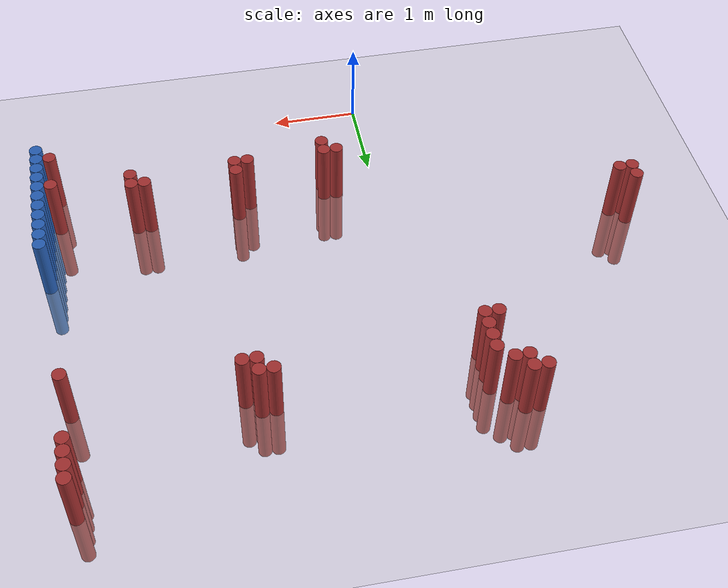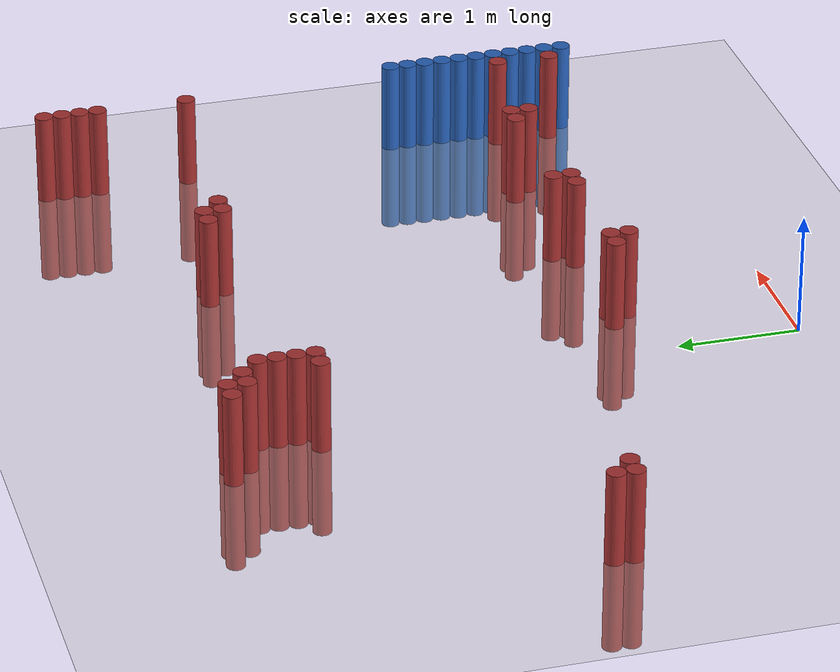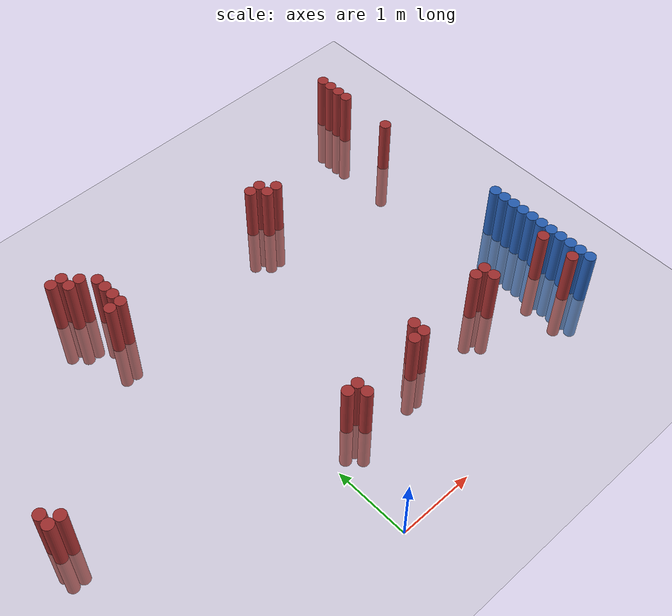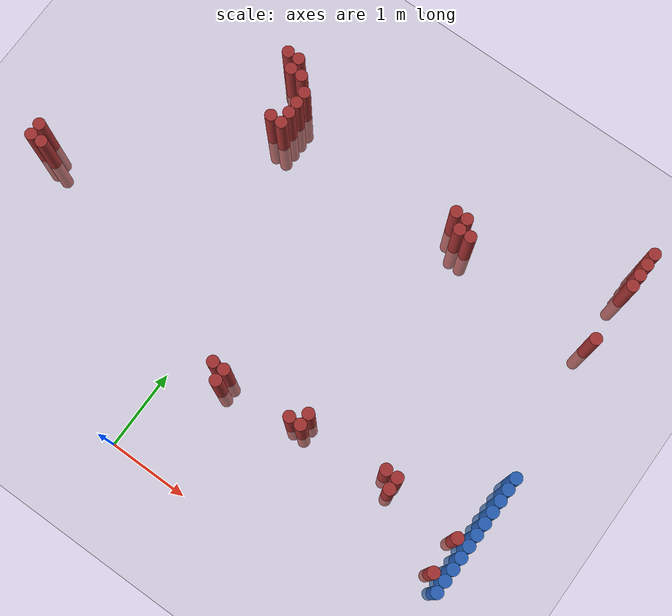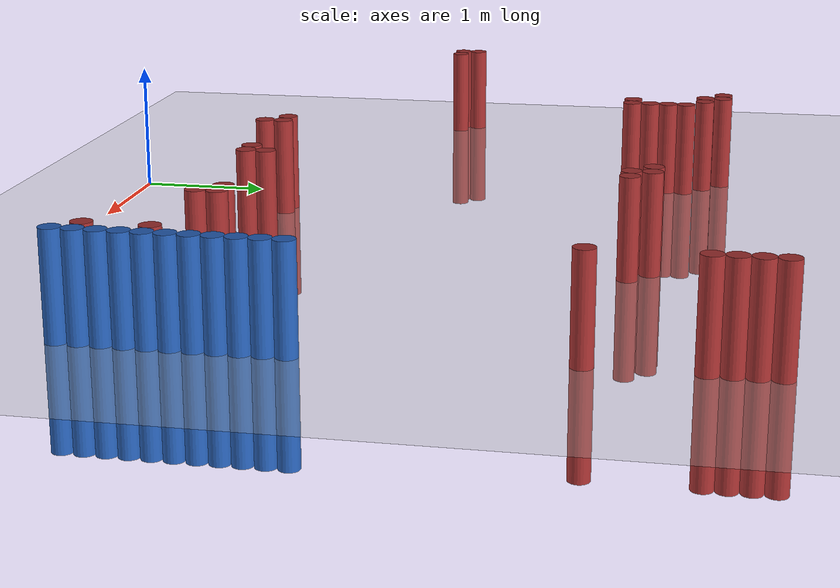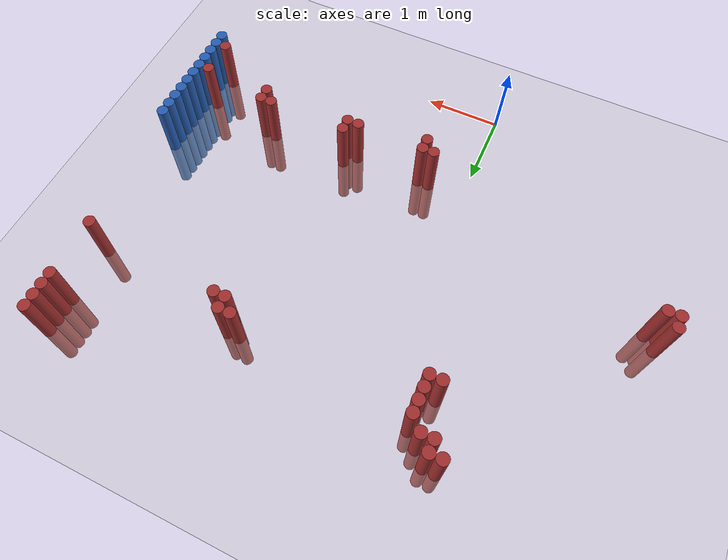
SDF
<sdf version="1.6">
 <world name="default">
  <model name="ground_plane">
   <static>1</static>
   <link name="link">
    <collision name="collision">
     <geometry><plane><normal>0 0 1</normal><size>100 100</size></plane></geometry>
     <surface><friction><ode><mu>100</mu><mu2>50</mu2></ode></friction></surface>
    </collision>
    <visual name="visual">
     <cast_shadows>0</cast_shadows>
     <geometry><plane><normal>0 0 1</normal><size>100 100</size></plane></geometry>
     <material>
      <script><uri>file://media/materials/scripts/gazebo.material</uri><name>Gazebo/Grey</name></script>
     </material>
    </visual>
   </link>
  </model>
  <model name="unit_cylinder_126">
   <static>1</static>
   <pose>3.925000 0.925000 0.000000 0.000000 0.000000 0.000000</pose>
   <link name="link">
    <inertial>
     <mass>1</mass>
     <inertia><ixx>0.145833</ixx><ixy>0</ixy><ixz>0</ixz><iyy>0.145833</iyy><iyz>0</iyz><izz>0.125</izz></inertia>
    </inertial>
    <collision name="collision">
     <geometry><cylinder><radius>0.075000</radius><length>1.5</length></cylinder></geometry>
    </collision>
    <visual name="visual">
     <geometry><cylinder><radius>0.075000</radius><length>1.5</length></cylinder></geometry>
     <material>
      <ambient>0.152000 0.379000 0.720000 1</ambient>
      <diffuse>0.152000 0.379000 0.720000 1</diffuse>
     </material>
     <material>
      <script><name>Gazebo/Grey</name><uri>file://media/materials/scripts/gazebo.material</uri></script>
     </material>
    </visual>
   </link>
  </model>
  <model name="unit_cylinder_128">
   <static>1</static>
   <pose>3.925000 1.075000 0.000000 0.000000 0.000000 0.000000</pose>
   <link name="link">
    <inertial>
     <mass>1</mass>
     <inertia><ixx>0.145833</ixx><ixy>0</ixy><ixz>0</ixz><iyy>0.145833</iyy><iyz>0</iyz><izz>0.125</izz></inertia>
    </inertial>
    <collision name="collision">
     <geometry><cylinder><radius>0.075000</radius><length>1.5</length></cylinder></geometry>
    </collision>
    <visual name="visual">
     <geometry><cylinder><radius>0.075000</radius><length>1.5</length></cylinder></geometry>
     <material>
      <ambient>0.152000 0.379000 0.720000 1</ambient>
      <diffuse>0.152000 0.379000 0.720000 1</diffuse>
     </material>
     <material>
      <script><name>Gazebo/Grey</name><uri>file://media/materials/scripts/gazebo.material</uri></script>
     </material>
    </visual>
   </link>
  </model>
  <model name="unit_cylinder_130">
   <static>1</static>
   <pose>3.925000 1.225000 0.000000 0.000000 0.000000 0.000000</pose>
   <link name="link">
    <inertial>
     <mass>1</mass>
     <inertia><ixx>0.145833</ixx><ixy>0</ixy><ixz>0</ixz><iyy>0.145833</iyy><iyz>0</iyz><izz>0.125</izz></inertia>
    </inertial>
    <collision name="collision">
     <geometry><cylinder><radius>0.075000</radius><length>1.5</length></cylinder></geometry>
    </collision>
    <visual name="visual">
     <geometry><cylinder><radius>0.075000</radius><length>1.5</length></cylinder></geometry>
     <material>
      <ambient>0.152000 0.379000 0.720000 1</ambient>
      <diffuse>0.152000 0.379000 0.720000 1</diffuse>
     </material>
     <material>
      <script><name>Gazebo/Grey</name><uri>file://media/materials/scripts/gazebo.material</uri></script>
     </material>
    </visual>
   </link>
  </model>
  <model name="unit_cylinder_132">
   <static>1</static>
   <pose>3.925000 1.375000 0.000000 0.000000 0.000000 0.000000</pose>
   <link name="link">
    <inertial>
     <mass>1</mass>
     <inertia><ixx>0.145833</ixx><ixy>0</ixy><ixz>0</ixz><iyy>0.145833</iyy><iyz>0</iyz><izz>0.125</izz></inertia>
    </inertial>
    <collision name="collision">
     <geometry><cylinder><radius>0.075000</radius><length>1.5</length></cylinder></geometry>
    </collision>
    <visual name="visual">
     <geometry><cylinder><radius>0.075000</radius><length>1.5</length></cylinder></geometry>
     <material>
      <ambient>0.152000 0.379000 0.720000 1</ambient>
      <diffuse>0.152000 0.379000 0.720000 1</diffuse>
     </material>
     <material>
      <script><name>Gazebo/Grey</name><uri>file://media/materials/scripts/gazebo.material</uri></script>
     </material>
    </visual>
   </link>
  </model>
  <model name="unit_cylinder_134">
   <static>1</static>
   <pose>3.925000 1.525000 0.000000 0.000000 0.000000 0.000000</pose>
   <link name="link">
    <inertial>
     <mass>1</mass>
     <inertia><ixx>0.145833</ixx><ixy>0</ixy><ixz>0</ixz><iyy>0.145833</iyy><iyz>0</iyz><izz>0.125</izz></inertia>
    </inertial>
    <collision name="collision">
     <geometry><cylinder><radius>0.075000</radius><length>1.5</length></cylinder></geometry>
    </collision>
    <visual name="visual">
     <geometry><cylinder><radius>0.075000</radius><length>1.5</length></cylinder></geometry>
     <material>
      <ambient>0.152000 0.379000 0.720000 1</ambient>
      <diffuse>0.152000 0.379000 0.720000 1</diffuse>
     </material>
     <material>
      <script><name>Gazebo/Grey</name><uri>file://media/materials/scripts/gazebo.material</uri></script>
     </material>
    </visual>
   </link>
  </model>
  <model name="unit_cylinder_136">
   <static>1</static>
   <pose>3.925000 1.675000 0.000000 0.000000 0.000000 0.000000</pose>
   <link name="link">
    <inertial>
     <mass>1</mass>
     <inertia><ixx>0.145833</ixx><ixy>0</ixy><ixz>0</ixz><iyy>0.145833</iyy><iyz>0</iyz><izz>0.125</izz></inertia>
    </inertial>
    <collision name="collision">
     <geometry><cylinder><radius>0.075000</radius><length>1.5</length></cylinder></geometry>
    </collision>
    <visual name="visual">
     <geometry><cylinder><radius>0.075000</radius><length>1.5</length></cylinder></geometry>
     <material>
      <ambient>0.152000 0.379000 0.720000 1</ambient>
      <diffuse>0.152000 0.379000 0.720000 1</diffuse>
     </material>
     <material>
      <script><name>Gazebo/Grey</name><uri>file://media/materials/scripts/gazebo.material</uri></script>
     </material>
    </visual>
   </link>
  </model>
  <model name="unit_cylinder_138">
   <static>1</static>
   <pose>3.925000 1.825000 0.000000 0.000000 0.000000 0.000000</pose>
   <link name="link">
    <inertial>
     <mass>1</mass>
     <inertia><ixx>0.145833</ixx><ixy>0</ixy><ixz>0</ixz><iyy>0.145833</iyy><iyz>0</iyz><izz>0.125</izz></inertia>
    </inertial>
    <collision name="collision">
     <geometry><cylinder><radius>0.075000</radius><length>1.5</length></cylinder></geometry>
    </collision>
    <visual name="visual">
     <geometry><cylinder><radius>0.075000</radius><length>1.5</length></cylinder></geometry>
     <material>
      <ambient>0.152000 0.379000 0.720000 1</ambient>
      <diffuse>0.152000 0.379000 0.720000 1</diffuse>
     </material>
     <material>
      <script><name>Gazebo/Grey</name><uri>file://media/materials/scripts/gazebo.material</uri></script>
     </material>
    </visual>
   </link>
  </model>
  <model name="unit_cylinder_140">
   <static>1</static>
   <pose>3.925000 1.975000 0.000000 0.000000 0.000000 0.000000</pose>
   <link name="link">
    <inertial>
     <mass>1</mass>
     <inertia><ixx>0.145833</ixx><ixy>0</ixy><ixz>0</ixz><iyy>0.145833</iyy><iyz>0</iyz><izz>0.125</izz></inertia>
    </inertial>
    <collision name="collision">
     <geometry><cylinder><radius>0.075000</radius><length>1.5</length></cylinder></geometry>
    </collision>
    <visual name="visual">
     <geometry><cylinder><radius>0.075000</radius><length>1.5</length></cylinder></geometry>
     <material>
      <ambient>0.152000 0.379000 0.720000 1</ambient>
      <diffuse>0.152000 0.379000 0.720000 1</diffuse>
     </material>
     <material>
      <script><name>Gazebo/Grey</name><uri>file://media/materials/scripts/gazebo.material</uri></script>
     </material>
    </visual>
   </link>
  </model>
  <model name="unit_cylinder_142">
   <static>1</static>
   <pose>3.925000 2.125000 0.000000 0.000000 0.000000 0.000000</pose>
   <link name="link">
    <inertial>
     <mass>1</mass>
     <inertia><ixx>0.145833</ixx><ixy>0</ixy><ixz>0</ixz><iyy>0.145833</iyy><iyz>0</iyz><izz>0.125</izz></inertia>
    </inertial>
    <collision name="collision">
     <geometry><cylinder><radius>0.075000</radius><length>1.5</length></cylinder></geometry>
    </collision>
    <visual name="visual">
     <geometry><cylinder><radius>0.075000</radius><length>1.5</length></cylinder></geometry>
     <material>
      <ambient>0.152000 0.379000 0.720000 1</ambient>
      <diffuse>0.152000 0.379000 0.720000 1</diffuse>
     </material>
     <material>
      <script><name>Gazebo/Grey</name><uri>file://media/materials/scripts/gazebo.material</uri></script>
     </material>
    </visual>
   </link>
  </model>
  <model name="unit_cylinder_144">
   <static>1</static>
   <pose>3.925000 2.275000 0.000000 0.000000 0.000000 0.000000</pose>
   <link name="link">
    <inertial>
     <mass>1</mass>
     <inertia><ixx>0.145833</ixx><ixy>0</ixy><ixz>0</ixz><iyy>0.145833</iyy><iyz>0</iyz><izz>0.125</izz></inertia>
    </inertial>
    <collision name="collision">
     <geometry><cylinder><radius>0.075000</radius><length>1.5</length></cylinder></geometry>
    </collision>
    <visual name="visual">
     <geometry><cylinder><radius>0.075000</radius><length>1.5</length></cylinder></geometry>
     <material>
      <ambient>0.152000 0.379000 0.720000 1</ambient>
      <diffuse>0.152000 0.379000 0.720000 1</diffuse>
     </material>
     <material>
      <script><name>Gazebo/Grey</name><uri>file://media/materials/scripts/gazebo.material</uri></script>
     </material>
    </visual>
   </link>
  </model>
  <model name="unit_cylinder_294">
   <static>1</static>
   <pose>-2.825000 2.275000 0.000000 0.000000 0.000000 0.000000</pose>
   <link name="link">
    <inertial>
     <mass>1</mass>
     <inertia><ixx>0.145833</ixx><ixy>0</ixy><ixz>0</ixz><iyy>0.145833</iyy><iyz>0</iyz><izz>0.125</izz></inertia>
    </inertial>
    <collision name="collision">
     <geometry><cylinder><radius>0.075000</radius><length>1.5</length></cylinder></geometry>
    </collision>
    <visual name="visual">
     <geometry><cylinder><radius>0.075000</radius><length>1.5</length></cylinder></geometry>
     <material>
      <ambient>0.648000 0.192000 0.192000 1</ambient>
      <diffuse>0.648000 0.192000 0.192000 1</diffuse>
     </material>
     <material>
      <script><name>Gazebo/Grey</name><uri>file://media/materials/scripts/gazebo.material</uri></script>
     </material>
    </visual>
   </link>
  </model>
  <model name="unit_cylinder_295">
   <static>1</static>
   <pose>-2.825000 2.425000 0.000000 0.000000 0.000000 0.000000</pose>
   <link name="link">
    <inertial>
     <mass>1</mass>
     <inertia><ixx>0.145833</ixx><ixy>0</ixy><ixz>0</ixz><iyy>0.145833</iyy><iyz>0</iyz><izz>0.125</izz></inertia>
    </inertial>
    <collision name="collision">
     <geometry><cylinder><radius>0.075000</radius><length>1.5</length></cylinder></geometry>
    </collision>
    <visual name="visual">
     <geometry><cylinder><radius>0.075000</radius><length>1.5</length></cylinder></geometry>
     <material>
      <ambient>0.648000 0.192000 0.192000 1</ambient>
      <diffuse>0.648000 0.192000 0.192000 1</diffuse>
     </material>
     <material>
      <script><name>Gazebo/Grey</name><uri>file://media/materials/scripts/gazebo.material</uri></script>
     </material>
    </visual>
   </link>
  </model>
  <model name="unit_cylinder_299">
   <static>1</static>
   <pose>-2.675000 2.275000 0.000000 0.000000 0.000000 0.000000</pose>
   <link name="link">
    <inertial>
     <mass>1</mass>
     <inertia><ixx>0.145833</ixx><ixy>0</ixy><ixz>0</ixz><iyy>0.145833</iyy><iyz>0</iyz><izz>0.125</izz></inertia>
    </inertial>
    <collision name="collision">
     <geometry><cylinder><radius>0.075000</radius><length>1.5</length></cylinder></geometry>
    </collision>
    <visual name="visual">
     <geometry><cylinder><radius>0.075000</radius><length>1.5</length></cylinder></geometry>
     <material>
      <ambient>0.648000 0.192000 0.192000 1</ambient>
      <diffuse>0.648000 0.192000 0.192000 1</diffuse>
     </material>
     <material>
      <script><name>Gazebo/Grey</name><uri>file://media/materials/scripts/gazebo.material</uri></script>
     </material>
    </visual>
   </link>
  </model>
  <model name="unit_cylinder_301">
   <static>1</static>
   <pose>-1.025000 4.825000 0.000000 0.000000 0.000000 0.000000</pose>
   <link name="link">
    <inertial>
     <mass>1</mass>
     <inertia><ixx>0.145833</ixx><ixy>0</ixy><ixz>0</ixz><iyy>0.145833</iyy><iyz>0</iyz><izz>0.125</izz></inertia>
    </inertial>
    <collision name="collision">
     <geometry><cylinder><radius>0.075000</radius><length>1.5</length></cylinder></geometry>
    </collision>
    <visual name="visual">
     <geometry><cylinder><radius>0.075000</radius><length>1.5</length></cylinder></geometry>
     <material>
      <ambient>0.648000 0.192000 0.192000 1</ambient>
      <diffuse>0.648000 0.192000 0.192000 1</diffuse>
     </material>
     <material>
      <script><name>Gazebo/Grey</name><uri>file://media/materials/scripts/gazebo.material</uri></script>
     </material>
    </visual>
   </link>
  </model>
  <model name="unit_cylinder_302">
   <static>1</static>
   <pose>-0.875000 4.675000 0.000000 0.000000 0.000000 0.000000</pose>
   <link name="link">
    <inertial>
     <mass>1</mass>
     <inertia><ixx>0.145833</ixx><ixy>0</ixy><ixz>0</ixz><iyy>0.145833</iyy><iyz>0</iyz><izz>0.125</izz></inertia>
    </inertial>
    <collision name="collision">
     <geometry><cylinder><radius>0.075000</radius><length>1.5</length></cylinder></geometry>
    </collision>
    <visual name="visual">
     <geometry><cylinder><radius>0.075000</radius><length>1.5</length></cylinder></geometry>
     <material>
      <ambient>0.648000 0.192000 0.192000 1</ambient>
      <diffuse>0.648000 0.192000 0.192000 1</diffuse>
     </material>
     <material>
      <script><name>Gazebo/Grey</name><uri>file://media/materials/scripts/gazebo.material</uri></script>
     </material>
    </visual>
   </link>
  </model>
  <model name="unit_cylinder_303">
   <static>1</static>
   <pose>-0.875000 4.825000 0.000000 0.000000 0.000000 0.000000</pose>
   <link name="link">
    <inertial>
     <mass>1</mass>
     <inertia><ixx>0.145833</ixx><ixy>0</ixy><ixz>0</ixz><iyy>0.145833</iyy><iyz>0</iyz><izz>0.125</izz></inertia>
    </inertial>
    <collision name="collision">
     <geometry><cylinder><radius>0.075000</radius><length>1.5</length></cylinder></geometry>
    </collision>
    <visual name="visual">
     <geometry><cylinder><radius>0.075000</radius><length>1.5</length></cylinder></geometry>
     <material>
      <ambient>0.648000 0.192000 0.192000 1</ambient>
      <diffuse>0.648000 0.192000 0.192000 1</diffuse>
     </material>
     <material>
      <script><name>Gazebo/Grey</name><uri>file://media/materials/scripts/gazebo.material</uri></script>
     </material>
    </visual>
   </link>
  </model>
  <model name="unit_cylinder_304">
   <static>1</static>
   <pose>-0.725000 4.075000 0.000000 0.000000 0.000000 0.000000</pose>
   <link name="link">
    <inertial>
     <mass>1</mass>
     <inertia><ixx>0.145833</ixx><ixy>0</ixy><ixz>0</ixz><iyy>0.145833</iyy><iyz>0</iyz><izz>0.125</izz></inertia>
    </inertial>
    <collision name="collision">
     <geometry><cylinder><radius>0.075000</radius><length>1.5</length></cylinder></geometry>
    </collision>
    <visual name="visual">
     <geometry><cylinder><radius>0.075000</radius><length>1.5</length></cylinder></geometry>
     <material>
      <ambient>0.648000 0.192000 0.192000 1</ambient>
      <diffuse>0.648000 0.192000 0.192000 1</diffuse>
     </material>
     <material>
      <script><name>Gazebo/Grey</name><uri>file://media/materials/scripts/gazebo.material</uri></script>
     </material>
    </visual>
   </link>
  </model>
  <model name="unit_cylinder_305">
   <static>1</static>
   <pose>-0.725000 4.675000 0.000000 0.000000 0.000000 0.000000</pose>
   <link name="link">
    <inertial>
     <mass>1</mass>
     <inertia><ixx>0.145833</ixx><ixy>0</ixy><ixz>0</ixz><iyy>0.145833</iyy><iyz>0</iyz><izz>0.125</izz></inertia>
    </inertial>
    <collision name="collision">
     <geometry><cylinder><radius>0.075000</radius><length>1.5</length></cylinder></geometry>
    </collision>
    <visual name="visual">
     <geometry><cylinder><radius>0.075000</radius><length>1.5</length></cylinder></geometry>
     <material>
      <ambient>0.648000 0.192000 0.192000 1</ambient>
      <diffuse>0.648000 0.192000 0.192000 1</diffuse>
     </material>
     <material>
      <script><name>Gazebo/Grey</name><uri>file://media/materials/scripts/gazebo.material</uri></script>
     </material>
    </visual>
   </link>
  </model>
  <model name="unit_cylinder_308">
   <static>1</static>
   <pose>-0.575000 4.075000 0.000000 0.000000 0.000000 0.000000</pose>
   <link name="link">
    <inertial>
     <mass>1</mass>
     <inertia><ixx>0.145833</ixx><ixy>0</ixy><ixz>0</ixz><iyy>0.145833</iyy><iyz>0</iyz><izz>0.125</izz></inertia>
    </inertial>
    <collision name="collision">
     <geometry><cylinder><radius>0.075000</radius><length>1.5</length></cylinder></geometry>
    </collision>
    <visual name="visual">
     <geometry><cylinder><radius>0.075000</radius><length>1.5</length></cylinder></geometry>
     <material>
      <ambient>0.648000 0.192000 0.192000 1</ambient>
      <diffuse>0.648000 0.192000 0.192000 1</diffuse>
     </material>
     <material>
      <script><name>Gazebo/Grey</name><uri>file://media/materials/scripts/gazebo.material</uri></script>
     </material>
    </visual>
   </link>
  </model>
  <model name="unit_cylinder_309">
   <static>1</static>
   <pose>-0.575000 4.225000 0.000000 0.000000 0.000000 0.000000</pose>
   <link name="link">
    <inertial>
     <mass>1</mass>
     <inertia><ixx>0.145833</ixx><ixy>0</ixy><ixz>0</ixz><iyy>0.145833</iyy><iyz>0</iyz><izz>0.125</izz></inertia>
    </inertial>
    <collision name="collision">
     <geometry><cylinder><radius>0.075000</radius><length>1.5</length></cylinder></geometry>
    </collision>
    <visual name="visual">
     <geometry><cylinder><radius>0.075000</radius><length>1.5</length></cylinder></geometry>
     <material>
      <ambient>0.648000 0.192000 0.192000 1</ambient>
      <diffuse>0.648000 0.192000 0.192000 1</diffuse>
     </material>
     <material>
      <script><name>Gazebo/Grey</name><uri>file://media/materials/scripts/gazebo.material</uri></script>
     </material>
    </visual>
   </link>
  </model>
  <model name="unit_cylinder_310">
   <static>1</static>
   <pose>-0.575000 4.375000 0.000000 0.000000 0.000000 0.000000</pose>
   <link name="link">
    <inertial>
     <mass>1</mass>
     <inertia><ixx>0.145833</ixx><ixy>0</ixy><ixz>0</ixz><iyy>0.145833</iyy><iyz>0</iyz><izz>0.125</izz></inertia>
    </inertial>
    <collision name="collision">
     <geometry><cylinder><radius>0.075000</radius><length>1.5</length></cylinder></geometry>
    </collision>
    <visual name="visual">
     <geometry><cylinder><radius>0.075000</radius><length>1.5</length></cylinder></geometry>
     <material>
      <ambient>0.648000 0.192000 0.192000 1</ambient>
      <diffuse>0.648000 0.192000 0.192000 1</diffuse>
     </material>
     <material>
      <script><name>Gazebo/Grey</name><uri>file://media/materials/scripts/gazebo.material</uri></script>
     </material>
    </visual>
   </link>
  </model>
  <model name="unit_cylinder_311">
   <static>1</static>
   <pose>-0.575000 4.525000 0.000000 0.000000 0.000000 0.000000</pose>
   <link name="link">
    <inertial>
     <mass>1</mass>
     <inertia><ixx>0.145833</ixx><ixy>0</ixy><ixz>0</ixz><iyy>0.145833</iyy><iyz>0</iyz><izz>0.125</izz></inertia>
    </inertial>
    <collision name="collision">
     <geometry><cylinder><radius>0.075000</radius><length>1.5</length></cylinder></geometry>
    </collision>
    <visual name="visual">
     <geometry><cylinder><radius>0.075000</radius><length>1.5</length></cylinder></geometry>
     <material>
      <ambient>0.648000 0.192000 0.192000 1</ambient>
      <diffuse>0.648000 0.192000 0.192000 1</diffuse>
     </material>
     <material>
      <script><name>Gazebo/Grey</name><uri>file://media/materials/scripts/gazebo.material</uri></script>
     </material>
    </visual>
   </link>
  </model>
  <model name="unit_cylinder_313">
   <static>1</static>
   <pose>0.475000 1.375000 0.000000 0.000000 0.000000 0.000000</pose>
   <link name="link">
    <inertial>
     <mass>1</mass>
     <inertia><ixx>0.145833</ixx><ixy>0</ixy><ixz>0</ixz><iyy>0.145833</iyy><iyz>0</iyz><izz>0.125</izz></inertia>
    </inertial>
    <collision name="collision">
     <geometry><cylinder><radius>0.075000</radius><length>1.5</length></cylinder></geometry>
    </collision>
    <visual name="visual">
     <geometry><cylinder><radius>0.075000</radius><length>1.5</length></cylinder></geometry>
     <material>
      <ambient>0.648000 0.192000 0.192000 1</ambient>
      <diffuse>0.648000 0.192000 0.192000 1</diffuse>
     </material>
     <material>
      <script><name>Gazebo/Grey</name><uri>file://media/materials/scripts/gazebo.material</uri></script>
     </material>
    </visual>
   </link>
  </model>
  <model name="unit_cylinder_314">
   <static>1</static>
   <pose>0.625000 1.225000 0.000000 0.000000 0.000000 0.000000</pose>
   <link name="link">
    <inertial>
     <mass>1</mass>
     <inertia><ixx>0.145833</ixx><ixy>0</ixy><ixz>0</ixz><iyy>0.145833</iyy><iyz>0</iyz><izz>0.125</izz></inertia>
    </inertial>
    <collision name="collision">
     <geometry><cylinder><radius>0.075000</radius><length>1.5</length></cylinder></geometry>
    </collision>
    <visual name="visual">
     <geometry><cylinder><radius>0.075000</radius><length>1.5</length></cylinder></geometry>
     <material>
      <ambient>0.648000 0.192000 0.192000 1</ambient>
      <diffuse>0.648000 0.192000 0.192000 1</diffuse>
     </material>
     <material>
      <script><name>Gazebo/Grey</name><uri>file://media/materials/scripts/gazebo.material</uri></script>
     </material>
    </visual>
   </link>
  </model>
  <model name="unit_cylinder_315">
   <static>1</static>
   <pose>0.625000 1.375000 0.000000 0.000000 0.000000 0.000000</pose>
   <link name="link">
    <inertial>
     <mass>1</mass>
     <inertia><ixx>0.145833</ixx><ixy>0</ixy><ixz>0</ixz><iyy>0.145833</iyy><iyz>0</iyz><izz>0.125</izz></inertia>
    </inertial>
    <collision name="collision">
     <geometry><cylinder><radius>0.075000</radius><length>1.5</length></cylinder></geometry>
    </collision>
    <visual name="visual">
     <geometry><cylinder><radius>0.075000</radius><length>1.5</length></cylinder></geometry>
     <material>
      <ambient>0.648000 0.192000 0.192000 1</ambient>
      <diffuse>0.648000 0.192000 0.192000 1</diffuse>
     </material>
     <material>
      <script><name>Gazebo/Grey</name><uri>file://media/materials/scripts/gazebo.material</uri></script>
     </material>
    </visual>
   </link>
  </model>
  <model name="unit_cylinder_318">
   <static>1</static>
   <pose>1.525000 1.375000 0.000000 0.000000 0.000000 0.000000</pose>
   <link name="link">
    <inertial>
     <mass>1</mass>
     <inertia><ixx>0.145833</ixx><ixy>0</ixy><ixz>0</ixz><iyy>0.145833</iyy><iyz>0</iyz><izz>0.125</izz></inertia>
    </inertial>
    <collision name="collision">
     <geometry><cylinder><radius>0.075000</radius><length>1.5</length></cylinder></geometry>
    </collision>
    <visual name="visual">
     <geometry><cylinder><radius>0.075000</radius><length>1.5</length></cylinder></geometry>
     <material>
      <ambient>0.648000 0.192000 0.192000 1</ambient>
      <diffuse>0.648000 0.192000 0.192000 1</diffuse>
     </material>
     <material>
      <script><name>Gazebo/Grey</name><uri>file://media/materials/scripts/gazebo.material</uri></script>
     </material>
    </visual>
   </link>
  </model>
  <model name="unit_cylinder_319">
   <static>1</static>
   <pose>1.675000 1.375000 0.000000 0.000000 0.000000 0.000000</pose>
   <link name="link">
    <inertial>
     <mass>1</mass>
     <inertia><ixx>0.145833</ixx><ixy>0</ixy><ixz>0</ixz><iyy>0.145833</iyy><iyz>0</iyz><izz>0.125</izz></inertia>
    </inertial>
    <collision name="collision">
     <geometry><cylinder><radius>0.075000</radius><length>1.5</length></cylinder></geometry>
    </collision>
    <visual name="visual">
     <geometry><cylinder><radius>0.075000</radius><length>1.5</length></cylinder></geometry>
     <material>
      <ambient>0.648000 0.192000 0.192000 1</ambient>
      <diffuse>0.648000 0.192000 0.192000 1</diffuse>
     </material>
     <material>
      <script><name>Gazebo/Grey</name><uri>file://media/materials/scripts/gazebo.material</uri></script>
     </material>
    </visual>
   </link>
  </model>
  <model name="unit_cylinder_320">
   <static>1</static>
   <pose>1.675000 1.525000 0.000000 0.000000 0.000000 0.000000</pose>
   <link name="link">
    <inertial>
     <mass>1</mass>
     <inertia><ixx>0.145833</ixx><ixy>0</ixy><ixz>0</ixz><iyy>0.145833</iyy><iyz>0</iyz><izz>0.125</izz></inertia>
    </inertial>
    <collision name="collision">
     <geometry><cylinder><radius>0.075000</radius><length>1.5</length></cylinder></geometry>
    </collision>
    <visual name="visual">
     <geometry><cylinder><radius>0.075000</radius><length>1.5</length></cylinder></geometry>
     <material>
      <ambient>0.648000 0.192000 0.192000 1</ambient>
      <diffuse>0.648000 0.192000 0.192000 1</diffuse>
     </material>
     <material>
      <script><name>Gazebo/Grey</name><uri>file://media/materials/scripts/gazebo.material</uri></script>
     </material>
    </visual>
   </link>
  </model>
  <model name="unit_cylinder_321">
   <static>1</static>
   <pose>1.675000 4.375000 0.000000 0.000000 0.000000 0.000000</pose>
   <link name="link">
    <inertial>
     <mass>1</mass>
     <inertia><ixx>0.145833</ixx><ixy>0</ixy><ixz>0</ixz><iyy>0.145833</iyy><iyz>0</iyz><izz>0.125</izz></inertia>
    </inertial>
    <collision name="collision">
     <geometry><cylinder><radius>0.075000</radius><length>1.5</length></cylinder></geometry>
    </collision>
    <visual name="visual">
     <geometry><cylinder><radius>0.075000</radius><length>1.5</length></cylinder></geometry>
     <material>
      <ambient>0.648000 0.192000 0.192000 1</ambient>
      <diffuse>0.648000 0.192000 0.192000 1</diffuse>
     </material>
     <material>
      <script><name>Gazebo/Grey</name><uri>file://media/materials/scripts/gazebo.material</uri></script>
     </material>
    </visual>
   </link>
  </model>
  <model name="unit_cylinder_322">
   <static>1</static>
   <pose>1.825000 4.225000 0.000000 0.000000 0.000000 0.000000</pose>
   <link name="link">
    <inertial>
     <mass>1</mass>
     <inertia><ixx>0.145833</ixx><ixy>0</ixy><ixz>0</ixz><iyy>0.145833</iyy><iyz>0</iyz><izz>0.125</izz></inertia>
    </inertial>
    <collision name="collision">
     <geometry><cylinder><radius>0.075000</radius><length>1.5</length></cylinder></geometry>
    </collision>
    <visual name="visual">
     <geometry><cylinder><radius>0.075000</radius><length>1.5</length></cylinder></geometry>
     <material>
      <ambient>0.648000 0.192000 0.192000 1</ambient>
      <diffuse>0.648000 0.192000 0.192000 1</diffuse>
     </material>
     <material>
      <script><name>Gazebo/Grey</name><uri>file://media/materials/scripts/gazebo.material</uri></script>
     </material>
    </visual>
   </link>
  </model>
  <model name="unit_cylinder_323">
   <static>1</static>
   <pose>1.825000 4.375000 0.000000 0.000000 0.000000 0.000000</pose>
   <link name="link">
    <inertial>
     <mass>1</mass>
     <inertia><ixx>0.145833</ixx><ixy>0</ixy><ixz>0</ixz><iyy>0.145833</iyy><iyz>0</iyz><izz>0.125</izz></inertia>
    </inertial>
    <collision name="collision">
     <geometry><cylinder><radius>0.075000</radius><length>1.5</length></cylinder></geometry>
    </collision>
    <visual name="visual">
     <geometry><cylinder><radius>0.075000</radius><length>1.5</length></cylinder></geometry>
     <material>
      <ambient>0.648000 0.192000 0.192000 1</ambient>
      <diffuse>0.648000 0.192000 0.192000 1</diffuse>
     </material>
     <material>
      <script><name>Gazebo/Grey</name><uri>file://media/materials/scripts/gazebo.material</uri></script>
     </material>
    </visual>
   </link>
  </model>
  <model name="unit_cylinder_324">
   <static>1</static>
   <pose>1.975000 4.225000 0.000000 0.000000 0.000000 0.000000</pose>
   <link name="link">
    <inertial>
     <mass>1</mass>
     <inertia><ixx>0.145833</ixx><ixy>0</ixy><ixz>0</ixz><iyy>0.145833</iyy><iyz>0</iyz><izz>0.125</izz></inertia>
    </inertial>
    <collision name="collision">
     <geometry><cylinder><radius>0.075000</radius><length>1.5</length></cylinder></geometry>
    </collision>
    <visual name="visual">
     <geometry><cylinder><radius>0.075000</radius><length>1.5</length></cylinder></geometry>
     <material>
      <ambient>0.648000 0.192000 0.192000 1</ambient>
      <diffuse>0.648000 0.192000 0.192000 1</diffuse>
     </material>
     <material>
      <script><name>Gazebo/Grey</name><uri>file://media/materials/scripts/gazebo.material</uri></script>
     </material>
    </visual>
   </link>
  </model>
  <model name="unit_cylinder_325">
   <static>1</static>
   <pose>2.725000 1.525000 0.000000 0.000000 0.000000 0.000000</pose>
   <link name="link">
    <inertial>
     <mass>1</mass>
     <inertia><ixx>0.145833</ixx><ixy>0</ixy><ixz>0</ixz><iyy>0.145833</iyy><iyz>0</iyz><izz>0.125</izz></inertia>
    </inertial>
    <collision name="collision">
     <geometry><cylinder><radius>0.075000</radius><length>1.5</length></cylinder></geometry>
    </collision>
    <visual name="visual">
     <geometry><cylinder><radius>0.075000</radius><length>1.5</length></cylinder></geometry>
     <material>
      <ambient>0.648000 0.192000 0.192000 1</ambient>
      <diffuse>0.648000 0.192000 0.192000 1</diffuse>
     </material>
     <material>
      <script><name>Gazebo/Grey</name><uri>file://media/materials/scripts/gazebo.material</uri></script>
     </material>
    </visual>
   </link>
  </model>
  <model name="unit_cylinder_326">
   <static>1</static>
   <pose>2.875000 1.375000 0.000000 0.000000 0.000000 0.000000</pose>
   <link name="link">
    <inertial>
     <mass>1</mass>
     <inertia><ixx>0.145833</ixx><ixy>0</ixy><ixz>0</ixz><iyy>0.145833</iyy><iyz>0</iyz><izz>0.125</izz></inertia>
    </inertial>
    <collision name="collision">
     <geometry><cylinder><radius>0.075000</radius><length>1.5</length></cylinder></geometry>
    </collision>
    <visual name="visual">
     <geometry><cylinder><radius>0.075000</radius><length>1.5</length></cylinder></geometry>
     <material>
      <ambient>0.648000 0.192000 0.192000 1</ambient>
      <diffuse>0.648000 0.192000 0.192000 1</diffuse>
     </material>
     <material>
      <script><name>Gazebo/Grey</name><uri>file://media/materials/scripts/gazebo.material</uri></script>
     </material>
    </visual>
   </link>
  </model>
  <model name="unit_cylinder_327">
   <static>1</static>
   <pose>2.875000 1.525000 0.000000 0.000000 0.000000 0.000000</pose>
   <link name="link">
    <inertial>
     <mass>1</mass>
     <inertia><ixx>0.145833</ixx><ixy>0</ixy><ixz>0</ixz><iyy>0.145833</iyy><iyz>0</iyz><izz>0.125</izz></inertia>
    </inertial>
    <collision name="collision">
     <geometry><cylinder><radius>0.075000</radius><length>1.5</length></cylinder></geometry>
    </collision>
    <visual name="visual">
     <geometry><cylinder><radius>0.075000</radius><length>1.5</length></cylinder></geometry>
     <material>
      <ambient>0.648000 0.192000 0.192000 1</ambient>
      <diffuse>0.648000 0.192000 0.192000 1</diffuse>
     </material>
     <material>
      <script><name>Gazebo/Grey</name><uri>file://media/materials/scripts/gazebo.material</uri></script>
     </material>
    </visual>
   </link>
  </model>
  <model name="unit_cylinder_361">
   <static>1</static>
   <pose>3.775000 0.925000 0.000000 0.000000 0.000000 0.000000</pose>
   <link name="link">
    <inertial>
     <mass>1</mass>
     <inertia><ixx>0.145833</ixx><ixy>0</ixy><ixz>0</ixz><iyy>0.145833</iyy><iyz>0</iyz><izz>0.125</izz></inertia>
    </inertial>
    <collision name="collision">
     <geometry><cylinder><radius>0.075000</radius><length>1.5</length></cylinder></geometry>
    </collision>
    <visual name="visual">
     <geometry><cylinder><radius>0.075000</radius><length>1.5</length></cylinder></geometry>
     <material>
      <ambient>0.648000 0.192000 0.192000 1</ambient>
      <diffuse>0.648000 0.192000 0.192000 1</diffuse>
     </material>
     <material>
      <script><name>Gazebo/Grey</name><uri>file://media/materials/scripts/gazebo.material</uri></script>
     </material>
    </visual>
   </link>
  </model>
  <model name="unit_cylinder_362">
   <static>1</static>
   <pose>3.775000 1.375000 0.000000 0.000000 0.000000 0.000000</pose>
   <link name="link">
    <inertial>
     <mass>1</mass>
     <inertia><ixx>0.145833</ixx><ixy>0</ixy><ixz>0</ixz><iyy>0.145833</iyy><iyz>0</iyz><izz>0.125</izz></inertia>
    </inertial>
    <collision name="collision">
     <geometry><cylinder><radius>0.075000</radius><length>1.5</length></cylinder></geometry>
    </collision>
    <visual name="visual">
     <geometry><cylinder><radius>0.075000</radius><length>1.5</length></cylinder></geometry>
     <material>
      <ambient>0.648000 0.192000 0.192000 1</ambient>
      <diffuse>0.648000 0.192000 0.192000 1</diffuse>
     </material>
     <material>
      <script><name>Gazebo/Grey</name><uri>file://media/materials/scripts/gazebo.material</uri></script>
     </material>
    </visual>
   </link>
  </model>
  <model name="unit_cylinder_363">
   <static>1</static>
   <pose>3.775000 4.075000 0.000000 0.000000 0.000000 0.000000</pose>
   <link name="link">
    <inertial>
     <mass>1</mass>
     <inertia><ixx>0.145833</ixx><ixy>0</ixy><ixz>0</ixz><iyy>0.145833</iyy><iyz>0</iyz><izz>0.125</izz></inertia>
    </inertial>
    <collision name="collision">
     <geometry><cylinder><radius>0.075000</radius><length>1.5</length></cylinder></geometry>
    </collision>
    <visual name="visual">
     <geometry><cylinder><radius>0.075000</radius><length>1.5</length></cylinder></geometry>
     <material>
      <ambient>0.648000 0.192000 0.192000 1</ambient>
      <diffuse>0.648000 0.192000 0.192000 1</diffuse>
     </material>
     <material>
      <script><name>Gazebo/Grey</name><uri>file://media/materials/scripts/gazebo.material</uri></script>
     </material>
    </visual>
   </link>
  </model>
  <model name="unit_cylinder_364">
   <static>1</static>
   <pose>3.775000 4.825000 0.000000 0.000000 0.000000 0.000000</pose>
   <link name="link">
    <inertial>
     <mass>1</mass>
     <inertia><ixx>0.145833</ixx><ixy>0</ixy><ixz>0</ixz><iyy>0.145833</iyy><iyz>0</iyz><izz>0.125</izz></inertia>
    </inertial>
    <collision name="collision">
     <geometry><cylinder><radius>0.075000</radius><length>1.5</length></cylinder></geometry>
    </collision>
    <visual name="visual">
     <geometry><cylinder><radius>0.075000</radius><length>1.5</length></cylinder></geometry>
     <material>
      <ambient>0.648000 0.192000 0.192000 1</ambient>
      <diffuse>0.648000 0.192000 0.192000 1</diffuse>
     </material>
     <material>
      <script><name>Gazebo/Grey</name><uri>file://media/materials/scripts/gazebo.material</uri></script>
     </material>
    </visual>
   </link>
  </model>
  <model name="unit_cylinder_365">
   <static>1</static>
   <pose>3.775000 4.975000 0.000000 0.000000 0.000000 0.000000</pose>
   <link name="link">
    <inertial>
     <mass>1</mass>
     <inertia><ixx>0.145833</ixx><ixy>0</ixy><ixz>0</ixz><iyy>0.145833</iyy><iyz>0</iyz><izz>0.125</izz></inertia>
    </inertial>
    <collision name="collision">
     <geometry><cylinder><radius>0.075000</radius><length>1.5</length></cylinder></geometry>
    </collision>
    <visual name="visual">
     <geometry><cylinder><radius>0.075000</radius><length>1.5</length></cylinder></geometry>
     <material>
      <ambient>0.648000 0.192000 0.192000 1</ambient>
      <diffuse>0.648000 0.192000 0.192000 1</diffuse>
     </material>
     <material>
      <script><name>Gazebo/Grey</name><uri>file://media/materials/scripts/gazebo.material</uri></script>
     </material>
    </visual>
   </link>
  </model>
  <model name="unit_cylinder_366">
   <static>1</static>
   <pose>3.775000 5.125000 0.000000 0.000000 0.000000 0.000000</pose>
   <link name="link">
    <inertial>
     <mass>1</mass>
     <inertia><ixx>0.145833</ixx><ixy>0</ixy><ixz>0</ixz><iyy>0.145833</iyy><iyz>0</iyz><izz>0.125</izz></inertia>
    </inertial>
    <collision name="collision">
     <geometry><cylinder><radius>0.075000</radius><length>1.5</length></cylinder></geometry>
    </collision>
    <visual name="visual">
     <geometry><cylinder><radius>0.075000</radius><length>1.5</length></cylinder></geometry>
     <material>
      <ambient>0.648000 0.192000 0.192000 1</ambient>
      <diffuse>0.648000 0.192000 0.192000 1</diffuse>
     </material>
     <material>
      <script><name>Gazebo/Grey</name><uri>file://media/materials/scripts/gazebo.material</uri></script>
     </material>
    </visual>
   </link>
  </model>
  <model name="unit_cylinder_367">
   <static>1</static>
   <pose>3.775000 5.275000 0.000000 0.000000 0.000000 0.000000</pose>
   <link name="link">
    <inertial>
     <mass>1</mass>
     <inertia><ixx>0.145833</ixx><ixy>0</ixy><ixz>0</ixz><iyy>0.145833</iyy><iyz>0</iyz><izz>0.125</izz></inertia>
    </inertial>
    <collision name="collision">
     <geometry><cylinder><radius>0.075000</radius><length>1.5</length></cylinder></geometry>
    </collision>
    <visual name="visual">
     <geometry><cylinder><radius>0.075000</radius><length>1.5</length></cylinder></geometry>
     <material>
      <ambient>0.648000 0.192000 0.192000 1</ambient>
      <diffuse>0.648000 0.192000 0.192000 1</diffuse>
     </material>
     <material>
      <script><name>Gazebo/Grey</name><uri>file://media/materials/scripts/gazebo.material</uri></script>
     </material>
    </visual>
   </link>
  </model>
  <model name="unit_cylinder_386">
   <static>1</static>
   <pose>3.925000 0.775000 0.000000 0.000000 0.000000 0.000000</pose>
   <link name="link">
    <inertial>
     <mass>1</mass>
     <inertia><ixx>0.145833</ixx><ixy>0</ixy><ixz>0</ixz><iyy>0.145833</iyy><iyz>0</iyz><izz>0.125</izz></inertia>
    </inertial>
    <collision name="collision">
     <geometry><cylinder><radius>0.075000</radius><length>1.5</length></cylinder></geometry>
    </collision>
    <visual name="visual">
     <geometry><cylinder><radius>0.075000</radius><length>1.5</length></cylinder></geometry>
     <material>
      <ambient>0.152000 0.379000 0.720000 1</ambient>
      <diffuse>0.152000 0.379000 0.720000 1</diffuse>
     </material>
     <material>
      <script><name>Gazebo/Grey</name><uri>file://media/materials/scripts/gazebo.material</uri></script>
     </material>
    </visual>
   </link>
  </model>
  <model name="unit_cylinder_387">
   <static>1</static>
   <pose>3.925000 0.925000 0.000000 0.000000 0.000000 0.000000</pose>
   <link name="link">
    <inertial>
     <mass>1</mass>
     <inertia><ixx>0.145833</ixx><ixy>0</ixy><ixz>0</ixz><iyy>0.145833</iyy><iyz>0</iyz><izz>0.125</izz></inertia>
    </inertial>
    <collision name="collision">
     <geometry><cylinder><radius>0.075000</radius><length>1.5</length></cylinder></geometry>
    </collision>
    <visual name="visual">
     <geometry><cylinder><radius>0.075000</radius><length>1.5</length></cylinder></geometry>
     <material>
      <ambient>0.152000 0.379000 0.720000 1</ambient>
      <diffuse>0.152000 0.379000 0.720000 1</diffuse>
     </material>
     <material>
      <script><name>Gazebo/Grey</name><uri>file://media/materials/scripts/gazebo.material</uri></script>
     </material>
    </visual>
   </link>
  </model>
  <model name="unit_cylinder_388">
   <static>1</static>
   <pose>3.925000 1.075000 0.000000 0.000000 0.000000 0.000000</pose>
   <link name="link">
    <inertial>
     <mass>1</mass>
     <inertia><ixx>0.145833</ixx><ixy>0</ixy><ixz>0</ixz><iyy>0.145833</iyy><iyz>0</iyz><izz>0.125</izz></inertia>
    </inertial>
    <collision name="collision">
     <geometry><cylinder><radius>0.075000</radius><length>1.5</length></cylinder></geometry>
    </collision>
    <visual name="visual">
     <geometry><cylinder><radius>0.075000</radius><length>1.5</length></cylinder></geometry>
     <material>
      <ambient>0.152000 0.379000 0.720000 1</ambient>
      <diffuse>0.152000 0.379000 0.720000 1</diffuse>
     </material>
     <material>
      <script><name>Gazebo/Grey</name><uri>file://media/materials/scripts/gazebo.material</uri></script>
     </material>
    </visual>
   </link>
  </model>
  <model name="unit_cylinder_389">
   <static>1</static>
   <pose>3.925000 1.225000 0.000000 0.000000 0.000000 0.000000</pose>
   <link name="link">
    <inertial>
     <mass>1</mass>
     <inertia><ixx>0.145833</ixx><ixy>0</ixy><ixz>0</ixz><iyy>0.145833</iyy><iyz>0</iyz><izz>0.125</izz></inertia>
    </inertial>
    <collision name="collision">
     <geometry><cylinder><radius>0.075000</radius><length>1.5</length></cylinder></geometry>
    </collision>
    <visual name="visual">
     <geometry><cylinder><radius>0.075000</radius><length>1.5</length></cylinder></geometry>
     <material>
      <ambient>0.152000 0.379000 0.720000 1</ambient>
      <diffuse>0.152000 0.379000 0.720000 1</diffuse>
     </material>
     <material>
      <script><name>Gazebo/Grey</name><uri>file://media/materials/scripts/gazebo.material</uri></script>
     </material>
    </visual>
   </link>
  </model>
  <model name="unit_cylinder_390">
   <static>1</static>
   <pose>3.925000 1.375000 0.000000 0.000000 0.000000 0.000000</pose>
   <link name="link">
    <inertial>
     <mass>1</mass>
     <inertia><ixx>0.145833</ixx><ixy>0</ixy><ixz>0</ixz><iyy>0.145833</iyy><iyz>0</iyz><izz>0.125</izz></inertia>
    </inertial>
    <collision name="collision">
     <geometry><cylinder><radius>0.075000</radius><length>1.5</length></cylinder></geometry>
    </collision>
    <visual name="visual">
     <geometry><cylinder><radius>0.075000</radius><length>1.5</length></cylinder></geometry>
     <material>
      <ambient>0.152000 0.379000 0.720000 1</ambient>
      <diffuse>0.152000 0.379000 0.720000 1</diffuse>
     </material>
     <material>
      <script><name>Gazebo/Grey</name><uri>file://media/materials/scripts/gazebo.material</uri></script>
     </material>
    </visual>
   </link>
  </model>
  <model name="unit_cylinder_391">
   <static>1</static>
   <pose>3.925000 1.525000 0.000000 0.000000 0.000000 0.000000</pose>
   <link name="link">
    <inertial>
     <mass>1</mass>
     <inertia><ixx>0.145833</ixx><ixy>0</ixy><ixz>0</ixz><iyy>0.145833</iyy><iyz>0</iyz><izz>0.125</izz></inertia>
    </inertial>
    <collision name="collision">
     <geometry><cylinder><radius>0.075000</radius><length>1.5</length></cylinder></geometry>
    </collision>
    <visual name="visual">
     <geometry><cylinder><radius>0.075000</radius><length>1.5</length></cylinder></geometry>
     <material>
      <ambient>0.152000 0.379000 0.720000 1</ambient>
      <diffuse>0.152000 0.379000 0.720000 1</diffuse>
     </material>
     <material>
      <script><name>Gazebo/Grey</name><uri>file://media/materials/scripts/gazebo.material</uri></script>
     </material>
    </visual>
   </link>
  </model>
  <model name="unit_cylinder_392">
   <static>1</static>
   <pose>3.925000 1.675000 0.000000 0.000000 0.000000 0.000000</pose>
   <link name="link">
    <inertial>
     <mass>1</mass>
     <inertia><ixx>0.145833</ixx><ixy>0</ixy><ixz>0</ixz><iyy>0.145833</iyy><iyz>0</iyz><izz>0.125</izz></inertia>
    </inertial>
    <collision name="collision">
     <geometry><cylinder><radius>0.075000</radius><length>1.5</length></cylinder></geometry>
    </collision>
    <visual name="visual">
     <geometry><cylinder><radius>0.075000</radius><length>1.5</length></cylinder></geometry>
     <material>
      <ambient>0.152000 0.379000 0.720000 1</ambient>
      <diffuse>0.152000 0.379000 0.720000 1</diffuse>
     </material>
     <material>
      <script><name>Gazebo/Grey</name><uri>file://media/materials/scripts/gazebo.material</uri></script>
     </material>
    </visual>
   </link>
  </model>
  <model name="unit_cylinder_393">
   <static>1</static>
   <pose>3.925000 1.825000 0.000000 0.000000 0.000000 0.000000</pose>
   <link name="link">
    <inertial>
     <mass>1</mass>
     <inertia><ixx>0.145833</ixx><ixy>0</ixy><ixz>0</ixz><iyy>0.145833</iyy><iyz>0</iyz><izz>0.125</izz></inertia>
    </inertial>
    <collision name="collision">
     <geometry><cylinder><radius>0.075000</radius><length>1.5</length></cylinder></geometry>
    </collision>
    <visual name="visual">
     <geometry><cylinder><radius>0.075000</radius><length>1.5</length></cylinder></geometry>
     <material>
      <ambient>0.152000 0.379000 0.720000 1</ambient>
      <diffuse>0.152000 0.379000 0.720000 1</diffuse>
     </material>
     <material>
      <script><name>Gazebo/Grey</name><uri>file://media/materials/scripts/gazebo.material</uri></script>
     </material>
    </visual>
   </link>
  </model>
  <model name="unit_cylinder_394">
   <static>1</static>
   <pose>3.925000 1.975000 0.000000 0.000000 0.000000 0.000000</pose>
   <link name="link">
    <inertial>
     <mass>1</mass>
     <inertia><ixx>0.145833</ixx><ixy>0</ixy><ixz>0</ixz><iyy>0.145833</iyy><iyz>0</iyz><izz>0.125</izz></inertia>
    </inertial>
    <collision name="collision">
     <geometry><cylinder><radius>0.075000</radius><length>1.5</length></cylinder></geometry>
    </collision>
    <visual name="visual">
     <geometry><cylinder><radius>0.075000</radius><length>1.5</length></cylinder></geometry>
     <material>
      <ambient>0.152000 0.379000 0.720000 1</ambient>
      <diffuse>0.152000 0.379000 0.720000 1</diffuse>
     </material>
     <material>
      <script><name>Gazebo/Grey</name><uri>file://media/materials/scripts/gazebo.material</uri></script>
     </material>
    </visual>
   </link>
  </model>
  <model name="unit_cylinder_395">
   <static>1</static>
   <pose>3.925000 2.125000 0.000000 0.000000 0.000000 0.000000</pose>
   <link name="link">
    <inertial>
     <mass>1</mass>
     <inertia><ixx>0.145833</ixx><ixy>0</ixy><ixz>0</ixz><iyy>0.145833</iyy><iyz>0</iyz><izz>0.125</izz></inertia>
    </inertial>
    <collision name="collision">
     <geometry><cylinder><radius>0.075000</radius><length>1.5</length></cylinder></geometry>
    </collision>
    <visual name="visual">
     <geometry><cylinder><radius>0.075000</radius><length>1.5</length></cylinder></geometry>
     <material>
      <ambient>0.152000 0.379000 0.720000 1</ambient>
      <diffuse>0.152000 0.379000 0.720000 1</diffuse>
     </material>
     <material>
      <script><name>Gazebo/Grey</name><uri>file://media/materials/scripts/gazebo.material</uri></script>
     </material>
    </visual>
   </link>
  </model>
 </world>
</sdf>
